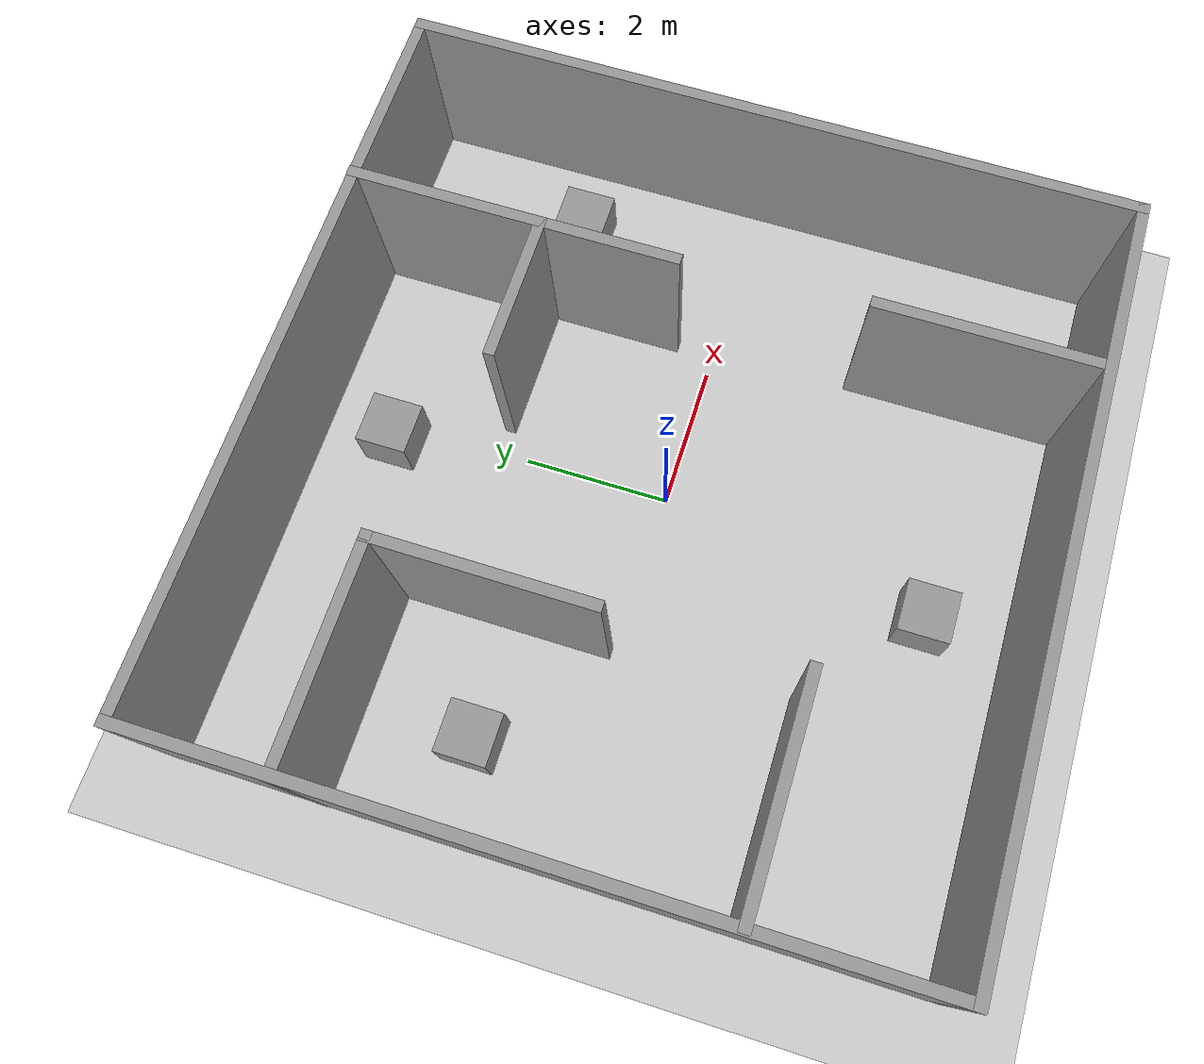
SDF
<sdf version="1.7">
 <world name="default">
  <light name="sun" type="directional">
   <pose>0 0 10 0 -0 0</pose>
   <diffuse>0.8 0.8 0.8 1</diffuse>
   <specular>0.2 0.2 0.2 1</specular>
   <attenuation>
    <range>1000</range>
    <constant>0.9</constant>
    <linear>0.01</linear>
    <quadratic>0.001</quadratic>
   </attenuation>
   <direction>-0.5 0.1 -0.9</direction>
   <spot><inner_angle>0</inner_angle><outer_angle>0</outer_angle><falloff>0</falloff></spot>
  </light>
  <model name="ground_plane">
   <static>1</static>
   <link name="link">
    <collision name="collision">
     <geometry><plane><normal>0 0 1</normal><size>100 100</size></plane></geometry>
     <surface><friction><ode><mu>100</mu><mu2>50</mu2></ode></friction></surface>
    </collision>
    <visual name="visual">
     <cast_shadows>0</cast_shadows>
     <geometry><plane><normal>0 0 1</normal><size>100 100</size></plane></geometry>
     <material>
      <script><uri>file://media/materials/scripts/gazebo.material</uri><name>Gazebo/Grey</name></script>
     </material>
    </visual>
   </link>
  </model>
  <gravity>0 0 -9.8</gravity>
  <magnetic_field>6e-06 2.3e-05 -4.2e-05</magnetic_field>
  <atmosphere type="adiabatic"/>
  <physics type="ode">
   <max_step_size>0.001</max_step_size>
   <real_time_factor>1</real_time_factor>
   <real_time_update_rate>1000</real_time_update_rate>
  </physics>
  <scene><ambient>0.4 0.4 0.4 1</ambient><background>0.7 0.7 0.7 1</background><shadows>1</shadows></scene>
  <audio><device>default</device></audio>
  <spherical_coordinates>
   <surface_model>EARTH_WGS84</surface_model>
   <latitude_deg>0</latitude_deg>
   <longitude_deg>0</longitude_deg>
   <elevation>0</elevation>
   <heading_deg>0</heading_deg>
  </spherical_coordinates>
  <model name="compile_office">
   <pose>-0.16871 0.01325 0 0 -0 0</pose>
   <link name="Wall_12">
    <collision name="Wall_12_Collision">
     <geometry><box><size>2.9737 0.15 2.5</size></box></geometry>
     <pose>0 0 1.25 0 -0 0</pose>
    </collision>
    <visual name="Wall_12_Visual">
     <pose>0 0 1.25 0 -0 0</pose>
     <geometry><box><size>2.9737 0.15 2.5</size></box></geometry>
     <material>
      <script><uri>file://media/materials/scripts/gazebo.material</uri><name>Gazebo/Grey</name></script>
      <ambient>1 1 1 1</ambient>
     </material>
     <meta><layer>0</layer></meta>
    </visual>
    <pose>-2.07655 1.54724 0 0 -0 -1.5708</pose>
   </link>
   <link name="Wall_16">
    <collision name="Wall_16_Collision">
     <geometry><box><size>3 0.15 2.5</size></box></geometry>
     <pose>0 0 1.25 0 -0 0</pose>
    </collision>
    <visual name="Wall_16_Visual">
     <pose>0 0 1.25 0 -0 0</pose>
     <geometry><box><size>3 0.15 2.5</size></box></geometry>
     <material>
      <script><uri>file://media/materials/scripts/gazebo.material</uri><name>Gazebo/Grey</name></script>
      <ambient>1 1 1 1</ambient>
     </material>
     <meta><layer>0</layer></meta>
    </visual>
    <pose>2.60858 -3.41405 0 0 -0 1.5708</pose>
   </link>
   <link name="Wall_18">
    <collision name="Wall_18_Collision">
     <geometry><box><size>4.5 0.15 2.5</size></box></geometry>
     <pose>0 0 1.25 0 -0 0</pose>
    </collision>
    <visual name="Wall_18_Visual">
     <pose>0 0 1.25 0 -0 0</pose>
     <geometry><box><size>4.5 0.15 2.5</size></box></geometry>
     <material>
      <script><uri>file://media/materials/scripts/gazebo.material</uri><name>Gazebo/Grey</name></script>
      <ambient>1 1 1 1</ambient>
     </material>
     <meta><layer>0</layer></meta>
    </visual>
    <pose>2.47708 2.75388 0 0 -0 1.5708</pose>
   </link>
   <link name="Wall_23">
    <collision name="Wall_23_Collision">
     <geometry><box><size>3 0.15 2.5</size></box></geometry>
     <pose>0 0 1.25 0 -0 0</pose>
    </collision>
    <visual name="Wall_23_Visual">
     <pose>0 0 1.25 0 -0 0</pose>
     <geometry><box><size>3 0.15 2.5</size></box></geometry>
     <material>
      <script><uri>file://media/materials/scripts/gazebo.material</uri><name>Gazebo/Grey</name></script>
      <ambient>1 1 1 1</ambient>
     </material>
     <meta><layer>0</layer></meta>
    </visual>
    <pose>-3.47525 -2.41939 0 0 -0 0</pose>
   </link>
   <link name="Wall_25">
    <collision name="Wall_25_Collision">
     <geometry><box><size>2 0.15 2.5</size></box></geometry>
     <pose>0 0 1.25 0 -0 0</pose>
    </collision>
    <visual name="Wall_25_Visual">
     <pose>0 0 1.25 0 -0 0</pose>
     <geometry><box><size>2 0.15 2.5</size></box></geometry>
     <material>
      <script><uri>file://media/materials/scripts/gazebo.material</uri><name>Gazebo/Grey</name></script>
      <ambient>1 1 1 1</ambient>
     </material>
     <meta><layer>0</layer></meta>
    </visual>
    <pose>1.52578 2.38048 0 0 -0 3.14159</pose>
   </link>
   <link name="Wall_27">
    <collision name="Wall_27_Collision">
     <geometry><box><size>3 0.15 2.5</size></box></geometry>
     <pose>0 0 1.25 0 -0 0</pose>
    </collision>
    <visual name="Wall_27_Visual">
     <pose>0 0 1.25 0 -0 0</pose>
     <geometry><box><size>3 0.15 2.5</size></box></geometry>
     <material>
      <script><uri>file://media/materials/scripts/gazebo.material</uri><name>Gazebo/Grey</name></script>
      <ambient>1 1 1 1</ambient>
     </material>
     <meta><layer>0</layer></meta>
    </visual>
    <pose>-3.50155 2.95909 0 0 -0 3.14159</pose>
   </link>
   <link name="Wall_4">
    <collision name="Wall_4_Collision">
     <geometry><box><size>10 0.15 2.5</size></box></geometry>
     <pose>0 0 1.25 0 -0 0</pose>
    </collision>
    <visual name="Wall_4_Visual">
     <pose>0 0 1.25 0 -0 0</pose>
     <geometry><box><size>10 0.15 2.5</size></box></geometry>
     <material>
      <script><uri>file://media/materials/scripts/gazebo.material</uri><name>Gazebo/Grey</name></script>
      <ambient>1 1 1 1</ambient>
     </material>
     <meta><layer>0</layer></meta>
    </visual>
    <pose>4.92655 -0.003881 0 0 -0 -1.5708</pose>
   </link>
   <link name="Wall_5">
    <collision name="Wall_5_Collision">
     <geometry><box><size>10 0.15 2.5</size></box></geometry>
     <pose>0 0 1.25 0 -0 0</pose>
    </collision>
    <visual name="Wall_5_Visual">
     <pose>0 0 1.25 0 -0 0</pose>
     <geometry><box><size>10 0.15 2.5</size></box></geometry>
     <material>
      <script><uri>file://media/materials/scripts/gazebo.material</uri><name>Gazebo/Grey</name></script>
      <ambient>1 1 1 1</ambient>
     </material>
     <meta><layer>0</layer></meta>
    </visual>
    <pose>0.001553 -4.92888 0 0 -0 3.14159</pose>
   </link>
   <link name="Wall_6">
    <collision name="Wall_6_Collision">
     <geometry><box><size>10 0.15 2.5</size></box></geometry>
     <pose>0 0 1.25 0 -0 0</pose>
    </collision>
    <visual name="Wall_6_Visual">
     <pose>0 0 1.25 0 -0 0</pose>
     <geometry><box><size>10 0.15 2.5</size></box></geometry>
     <material>
      <script><uri>file://media/materials/scripts/gazebo.material</uri><name>Gazebo/Grey</name></script>
      <ambient>1 1 1 1</ambient>
     </material>
     <meta><layer>0</layer></meta>
    </visual>
    <pose>-4.92345 -0.003881 0 0 -0 1.5708</pose>
   </link>
   <link name="Wall_9">
    <collision name="Wall_9_Collision">
     <geometry><box><size>10 0.15 2.5</size></box></geometry>
     <pose>0 0 1.25 0 -0 0</pose>
    </collision>
    <visual name="Wall_9_Visual">
     <pose>0 0 1.25 0 -0 0</pose>
     <geometry><box><size>10 0.15 2.5</size></box></geometry>
     <material>
      <script><uri>file://media/materials/scripts/gazebo.material</uri><name>Gazebo/Grey</name></script>
      <ambient>1 1 1 1</ambient>
     </material>
     <meta><layer>0</layer></meta>
    </visual>
    <pose>0.001553 4.92112 0 0 -0 0</pose>
   </link>
   <static>1</static>
  </model>
  <model name="compile_office_boxes2">
   <link name="link_4">
    <inertial>
     <mass>20</mass>
     <inertia><ixx>3.33333</ixx><ixy>0</ixy><ixz>0</ixz><iyy>3.33333</iyy><iyz>0</iyz><izz>3.33333</izz></inertia>
    </inertial>
    <pose>-3.5202 0.616555 0 0 -0 0</pose>
    <visual name="visual">
     <geometry><box><size>0.7 0.7 0.7</size></box></geometry>
     <material>
      <lighting>1</lighting>
      <script><uri>file://media/materials/scripts/gazebo.material</uri><name>Gazebo/Grey</name></script>
      <shader type="pixel"><normal_map>__default__</normal_map></shader>
      <ambient>0.3 0.3 0.3 1</ambient>
      <diffuse>0.7 0.7 0.7 1</diffuse>
      <specular>0.01 0.01 0.01 1</specular>
      <emissive>0 0 0 1</emissive>
     </material>
    </visual>
    <collision name="collision">
     <geometry><box><size>0.7 0.7 0.7</size></box></geometry>
     <surface>
      <friction>
       <ode><mu>1</mu><mu2>1</mu2><fdir1>0 0 0</fdir1><slip1>0</slip1><slip2>0</slip2></ode>
       <torsional>
        <coefficient>1</coefficient>
        <patch_radius>0</patch_radius>
        <surface_radius>0</surface_radius>
        <use_patch_radius>1</use_patch_radius>
        <ode><slip>0</slip></ode>
       </torsional>
      </friction>
      <bounce><restitution_coefficient>0</restitution_coefficient><threshold>1e+06</threshold></bounce>
      <contact>
       <collide_without_contact>0</collide_without_contact>
       <collide_without_contact_bitmask>1</collide_without_contact_bitmask>
       <collide_bitmask>1</collide_bitmask>
       <ode>
        <soft_cfm>0</soft_cfm>
        <soft_erp>0.2</soft_erp>
        <kp>1e+13</kp>
        <kd>1</kd>
        <max_vel>0.01</max_vel>
        <min_depth>0</min_depth>
       </ode>
       <bullet>
        <split_impulse>1</split_impulse>
        <split_impulse_penetration_threshold>-0.01</split_impulse_penetration_threshold>
        <soft_cfm>0</soft_cfm>
        <soft_erp>0.2</soft_erp>
        <kp>1e+13</kp>
        <kd>1</kd>
       </bullet>
      </contact>
     </surface>
    </collision>
   </link>
   <link name="link_4_clone_0">
    <inertial>
     <mass>20</mass>
     <inertia><ixx>3.33333</ixx><ixy>0</ixy><ixz>0</ixz><iyy>3.33333</iyy><iyz>0</iyz><izz>3.33333</izz></inertia>
    </inertial>
    <pose>-0.335113 -4.50198 0 0 -0 0</pose>
    <visual name="visual">
     <geometry><box><size>0.7 0.7 0.7</size></box></geometry>
     <material>
      <lighting>1</lighting>
      <script><uri>file://media/materials/scripts/gazebo.material</uri><name>Gazebo/Grey</name></script>
      <shader type="pixel"><normal_map>__default__</normal_map></shader>
      <ambient>0.3 0.3 0.3 1</ambient>
      <diffuse>0.7 0.7 0.7 1</diffuse>
      <specular>0.01 0.01 0.01 1</specular>
      <emissive>0 0 0 1</emissive>
     </material>
    </visual>
    <collision name="collision">
     <geometry><box><size>0.7 0.7 0.7</size></box></geometry>
     <surface>
      <friction>
       <ode><mu>1</mu><mu2>1</mu2><fdir1>0 0 0</fdir1><slip1>0</slip1><slip2>0</slip2></ode>
       <torsional>
        <coefficient>1</coefficient>
        <patch_radius>0</patch_radius>
        <surface_radius>0</surface_radius>
        <use_patch_radius>1</use_patch_radius>
        <ode><slip>0</slip></ode>
       </torsional>
      </friction>
      <bounce><restitution_coefficient>0</restitution_coefficient><threshold>1e+06</threshold></bounce>
      <contact>
       <collide_without_contact>0</collide_without_contact>
       <collide_without_contact_bitmask>1</collide_without_contact_bitmask>
       <collide_bitmask>1</collide_bitmask>
       <ode>
        <soft_cfm>0</soft_cfm>
        <soft_erp>0.2</soft_erp>
        <kp>1e+13</kp>
        <kd>1</kd>
        <max_vel>0.01</max_vel>
        <min_depth>0</min_depth>
       </ode>
       <bullet>
        <split_impulse>1</split_impulse>
        <split_impulse_penetration_threshold>-0.01</split_impulse_penetration_threshold>
        <soft_cfm>0</soft_cfm>
        <soft_erp>0.2</soft_erp>
        <kp>1e+13</kp>
        <kd>1</kd>
       </bullet>
      </contact>
     </surface>
    </collision>
   </link>
   <link name="link_4_clone_1">
    <inertial>
     <mass>20</mass>
     <inertia><ixx>3.33333</ixx><ixy>0</ixy><ixz>0</ixz><iyy>3.33333</iyy><iyz>0</iyz><izz>3.33333</izz></inertia>
    </inertial>
    <pose>3.95495 1.57201 -0 0 -0 0</pose>
    <visual name="visual">
     <geometry><box><size>0.7 0.7 0.7</size></box></geometry>
     <material>
      <lighting>1</lighting>
      <script><uri>file://media/materials/scripts/gazebo.material</uri><name>Gazebo/Grey</name></script>
      <shader type="pixel"><normal_map>__default__</normal_map></shader>
      <ambient>0.3 0.3 0.3 1</ambient>
      <diffuse>0.7 0.7 0.7 1</diffuse>
      <specular>0.01 0.01 0.01 1</specular>
      <emissive>0 0 0 1</emissive>
     </material>
    </visual>
    <collision name="collision">
     <geometry><box><size>0.7 0.7 0.7</size></box></geometry>
     <surface>
      <friction>
       <ode><mu>1</mu><mu2>1</mu2><fdir1>0 0 0</fdir1><slip1>0</slip1><slip2>0</slip2></ode>
       <torsional>
        <coefficient>1</coefficient>
        <patch_radius>0</patch_radius>
        <surface_radius>0</surface_radius>
        <use_patch_radius>1</use_patch_radius>
        <ode><slip>0</slip></ode>
       </torsional>
      </friction>
      <bounce><restitution_coefficient>0</restitution_coefficient><threshold>1e+06</threshold></bounce>
      <contact>
       <collide_without_contact>0</collide_without_contact>
       <collide_without_contact_bitmask>1</collide_without_contact_bitmask>
       <collide_bitmask>1</collide_bitmask>
       <ode>
        <soft_cfm>0</soft_cfm>
        <soft_erp>0.2</soft_erp>
        <kp>1e+13</kp>
        <kd>1</kd>
        <max_vel>0.01</max_vel>
        <min_depth>0</min_depth>
       </ode>
       <bullet>
        <split_impulse>1</split_impulse>
        <split_impulse_penetration_threshold>-0.01</split_impulse_penetration_threshold>
        <soft_cfm>0</soft_cfm>
        <soft_erp>0.2</soft_erp>
        <kp>1e+13</kp>
        <kd>1</kd>
       </bullet>
      </contact>
     </surface>
    </collision>
   </link>
   <link name="link_4_clone_2">
    <inertial>
     <mass>20</mass>
     <inertia><ixx>3.33333</ixx><ixy>0</ixy><ixz>0</ixz><iyy>3.33333</iyy><iyz>0</iyz><izz>3.33333</izz></inertia>
    </inertial>
    <pose>0.076582 3.06701 -0 0 -0 0</pose>
    <visual name="visual">
     <geometry><box><size>0.7 0.7 0.7</size></box></geometry>
     <material>
      <lighting>1</lighting>
      <script><uri>file://media/materials/scripts/gazebo.material</uri><name>Gazebo/Grey</name></script>
      <shader type="pixel"><normal_map>__default__</normal_map></shader>
      <ambient>0.3 0.3 0.3 1</ambient>
      <diffuse>0.7 0.7 0.7 1</diffuse>
      <specular>0.01 0.01 0.01 1</specular>
      <emissive>0 0 0 1</emissive>
     </material>
    </visual>
    <collision name="collision">
     <geometry><box><size>0.7 0.7 0.7</size></box></geometry>
     <surface>
      <friction>
       <ode><mu>1</mu><mu2>1</mu2><fdir1>0 0 0</fdir1><slip1>0</slip1><slip2>0</slip2></ode>
       <torsional>
        <coefficient>1</coefficient>
        <patch_radius>0</patch_radius>
        <surface_radius>0</surface_radius>
        <use_patch_radius>1</use_patch_radius>
        <ode><slip>0</slip></ode>
       </torsional>
      </friction>
      <bounce><restitution_coefficient>0</restitution_coefficient><threshold>1e+06</threshold></bounce>
      <contact>
       <collide_without_contact>0</collide_without_contact>
       <collide_without_contact_bitmask>1</collide_without_contact_bitmask>
       <collide_bitmask>1</collide_bitmask>
       <ode>
        <soft_cfm>0</soft_cfm>
        <soft_erp>0.2</soft_erp>
        <kp>1e+13</kp>
        <kd>1</kd>
        <max_vel>0.01</max_vel>
        <min_depth>0</min_depth>
       </ode>
       <bullet>
        <split_impulse>1</split_impulse>
        <split_impulse_penetration_threshold>-0.01</split_impulse_penetration_threshold>
        <soft_cfm>0</soft_cfm>
        <soft_erp>0.2</soft_erp>
        <kp>1e+13</kp>
        <kd>1</kd>
       </bullet>
      </contact>
     </surface>
    </collision>
   </link>
   <static>0</static>
   <pose>-0.31706 0.779915 0.35 0 -0 0</pose>
  </model>
 </world>
</sdf>
